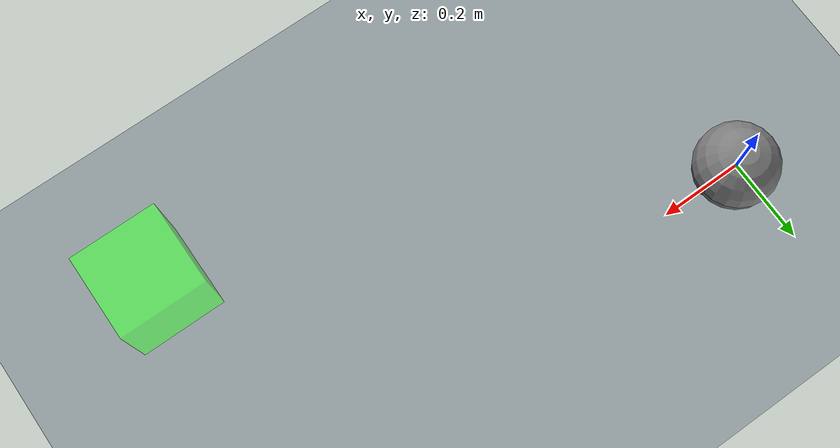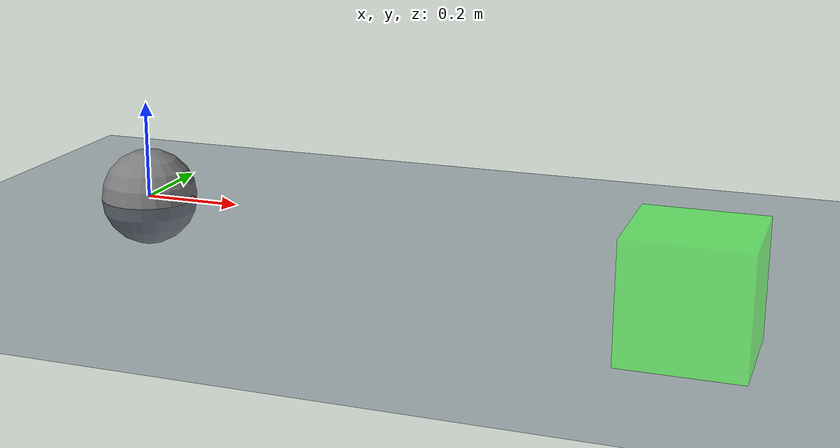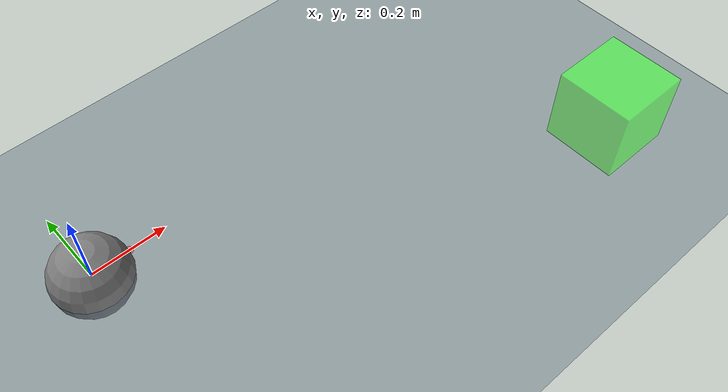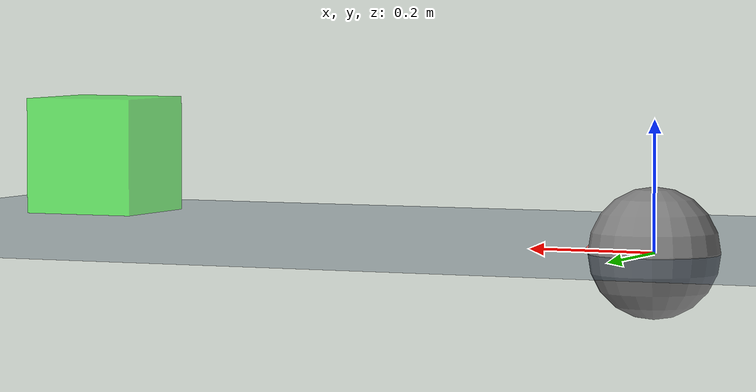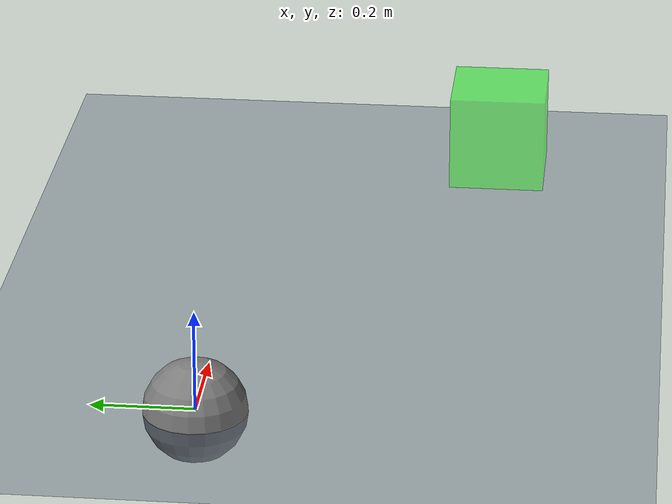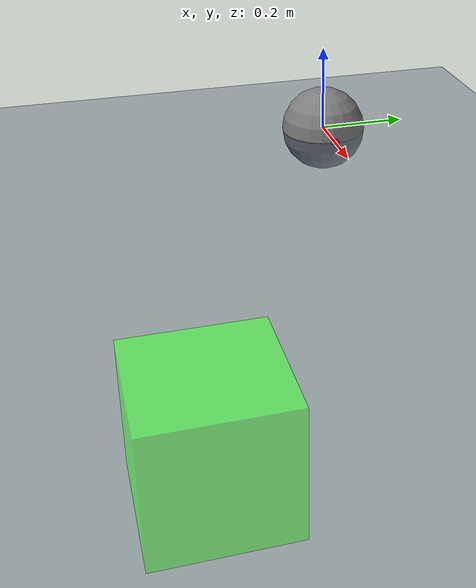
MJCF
<mujoco model="ball scene">
    <statistic center="0 0 0.1" extent="0.8"/>

    <option impratio="10"/>

    <visual>
        <headlight diffuse="0.6 0.6 0.6" ambient="0.3 0.3 0.3" specular="0 0 0"/>
        <rgba haze="0.15 0.25 0.35 1"/>
        <global azimuth="-130" elevation="-20"/>
    </visual>

    <asset>
        <texture type="skybox" builtin="gradient" rgb1="0.3 0.5 0.7" rgb2="0 0 0" width="512" height="3072"/>
        <texture type="2d" name="groundplane" builtin="checker" mark="edge" rgb1="0.2 0.3 0.4" rgb2="0.1 0.2 0.3"
        markrgb="0.8 0.8 0.8" width="300" height="300"/>
        <material name="groundplane" texture="groundplane" texuniform="true" texrepeat="5 5" reflectance="0.2"/>
    </asset>

    <worldbody>
        <light pos="0 0 1.5" dir="0 0 -1" directional="true"/>
        <geom name="floor" size="0 0 0.05" type="plane" material="groundplane"/>

        <!-- ball -->
        <body name="ball_body" pos="0.0 0 0.0">
            <joint name="free_joint" type="free" damping="0.01"/>
            <geom name="ball_geom" type="sphere" size="0.1" mass="1" contype="1" conaffinity="2"/>
            <body name="marker_body" pos="0.1 0 0">
                <geom name="marker_geom" type="sphere" size="0.01" mass="0" contype="0" conaffinity="0" rgba="140 0 0 0.5" />
            </body>
        </body>

        <!-- goal -->
        <body name="goal_body" pos="1.2 -0.5 0.1">
            <geom type="box" size="0.1 0.1 0.1" rgba="0 140 0 0.5" contype="0" conaffinity="0"/>
        </body>

    </worldbody>

    <actuator>

        <!-- free joint angular acceleration motors -->
        <motor joint="free_joint" name="torque_x" ctrlrange="-1 1" gear="0 0 0 0.5 0 0"/>
        <motor joint="free_joint" name="torque_y" ctrlrange="-1 1" gear="0 0 0 0 0.5 0"/>
    </actuator>

    <keyframe>
        <key name="home" qpos="0 0 0.1 1 0 0 0"/>
    </keyframe>
</mujoco>
